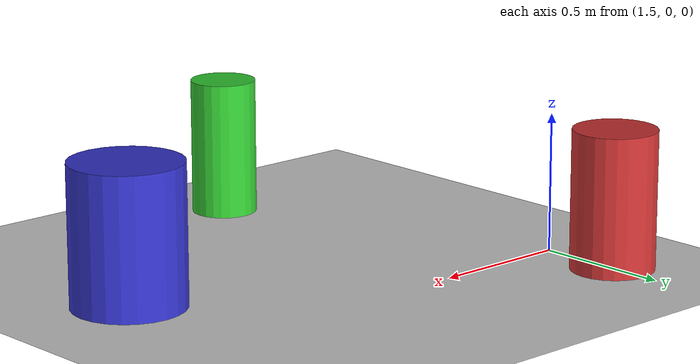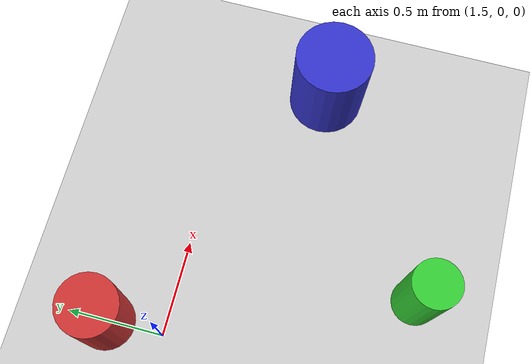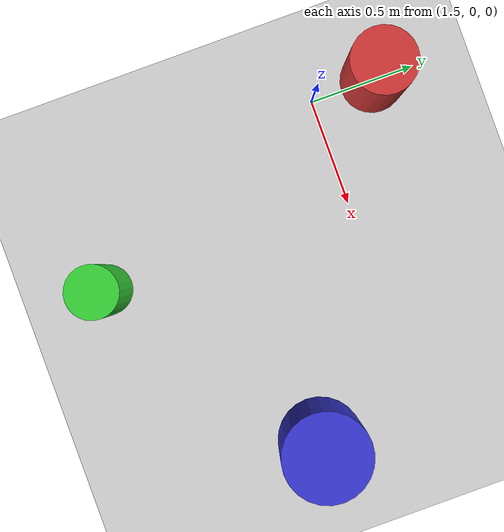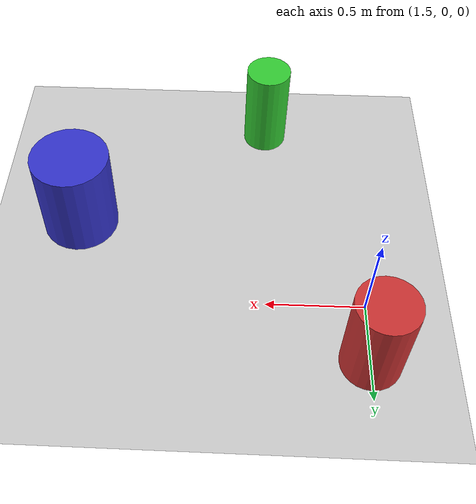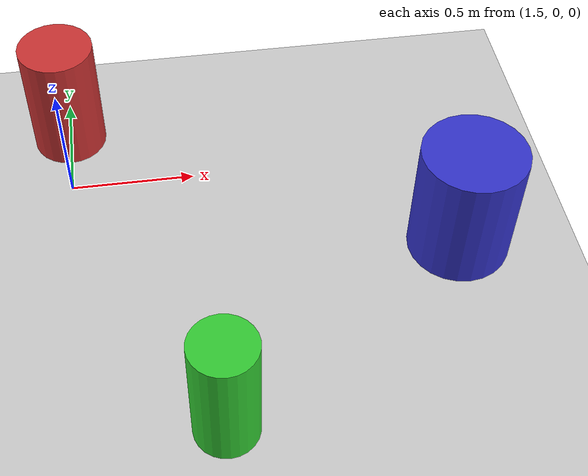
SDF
<?xml version="1.0" ?>
<!--
  obstacle_world.sdf — Simple Gazebo world with cylindrical obstacles.
  Use with: ros2 launch trajectory_control simulation.launch.py world:=obstacle_world.sdf
-->
<sdf version="1.6">
  <world name="obstacle_world">
    <!-- Physics -->
    <physics type="ode">
      <max_step_size>0.001</max_step_size>
      <real_time_factor>1.0</real_time_factor>
    </physics>

    <!-- Lighting -->
    <include>
      <uri>model://sun</uri>
    </include>

    <!-- Ground plane -->
    <include>
      <uri>model://ground_plane</uri>
    </include>

    <!-- Obstacle 1 -->
    <model name="obstacle_1">
      <static>true</static>
      <pose>1.5 0.3 0.25 0 0 0</pose>
      <link name="link">
        <collision name="collision">
          <geometry>
            <cylinder>
              <radius>0.15</radius>
              <length>0.5</length>
            </cylinder>
          </geometry>
        </collision>
        <visual name="visual">
          <geometry>
            <cylinder>
              <radius>0.15</radius>
              <length>0.5</length>
            </cylinder>
          </geometry>
          <material>
            <ambient>0.8 0.2 0.2 1</ambient>
            <diffuse>0.8 0.2 0.2 1</diffuse>
          </material>
        </visual>
      </link>
    </model>

    <!-- Obstacle 2 -->
    <model name="obstacle_2">
      <static>true</static>
      <pose>3.0 -0.5 0.25 0 0 0</pose>
      <link name="link">
        <collision name="collision">
          <geometry>
            <cylinder>
              <radius>0.2</radius>
              <length>0.5</length>
            </cylinder>
          </geometry>
        </collision>
        <visual name="visual">
          <geometry>
            <cylinder>
              <radius>0.2</radius>
              <length>0.5</length>
            </cylinder>
          </geometry>
          <material>
            <ambient>0.2 0.2 0.8 1</ambient>
            <diffuse>0.2 0.2 0.8 1</diffuse>
          </material>
        </visual>
      </link>
    </model>

    <!-- Obstacle 3 -->
    <model name="obstacle_3">
      <static>true</static>
      <pose>2.0 -1.2 0.25 0 0 0</pose>
      <link name="link">
        <collision name="collision">
          <geometry>
            <cylinder>
              <radius>0.12</radius>
              <length>0.5</length>
            </cylinder>
          </geometry>
        </collision>
        <visual name="visual">
          <geometry>
            <cylinder>
              <radius>0.12</radius>
              <length>0.5</length>
            </cylinder>
          </geometry>
          <material>
            <ambient>0.2 0.8 0.2 1</ambient>
            <diffuse>0.2 0.8 0.2 1</diffuse>
          </material>
        </visual>
      </link>
    </model>

  </world>
</sdf>
